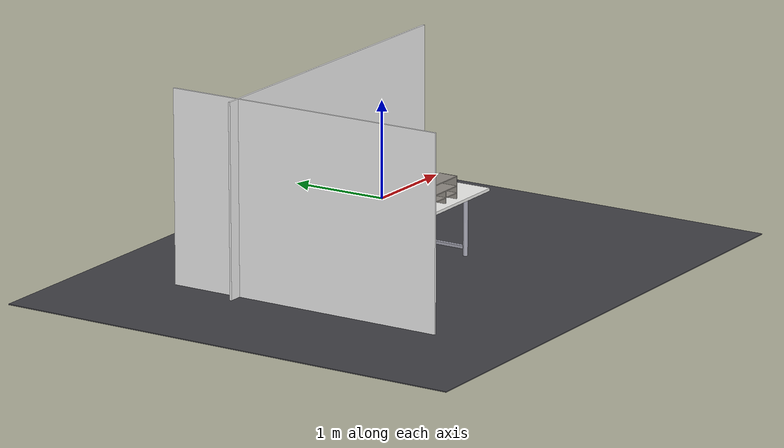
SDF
<sdf version="1.6">
 <world name="default">
  <model name="floor">
   <static>true</static>
   <pose>0.2 0 -0.77 0 0 0</pose>
   <link name="link">
    <collision name="collision"><geometry><box><size>6.0 5.0 0.01</size></box></geometry></collision>
    <visual name="visual">
     <geometry><box><size>6.0 5.0 0.01</size></box></geometry>
     <material>
      <ambient>0.22 0.22 0.24 1</ambient>
      <diffuse>0.26 0.26 0.28 1</diffuse>
      <specular>0.02 0.02 0.02 1</specular>
     </material>
    </visual>
   </link>
  </model>
  <model name="table">
   <static>true</static>
   <link name="link">
    <collision name="tabletop_col">
     <pose>0.2 0 -0.055 0 0 0</pose>
     <geometry><box><size>1.6 1.25 0.03</size></box></geometry>
    </collision>
    <visual name="tabletop_vis">
     <pose>0.2 0 -0.055 0 0 0</pose>
     <geometry><box><size>1.6 1.25 0.03</size></box></geometry>
     <material>
      <ambient>0.94 0.94 0.93 1</ambient>
      <diffuse>0.96 0.96 0.95 1</diffuse>
      <specular>0.4 0.4 0.4 1</specular>
     </material>
    </visual>
    <collision name="leg_fl_col">
     <pose>-0.55 -0.375 -0.42 0 0 0</pose>
     <geometry><cylinder><radius>0.025</radius><length>0.695</length></cylinder></geometry>
    </collision>
    <visual name="leg_fl_vis">
     <pose>-0.55 -0.375 -0.42 0 0 0</pose>
     <geometry><cylinder><radius>0.025</radius><length>0.695</length></cylinder></geometry>
     <material>
      <ambient>0.55 0.55 0.60 1</ambient>
      <diffuse>0.65 0.65 0.70 1</diffuse>
      <specular>0.85 0.85 0.90 1</specular>
     </material>
    </visual>
    <collision name="leg_fr_col">
     <pose>-0.55 0.375 -0.42 0 0 0</pose>
     <geometry><cylinder><radius>0.025</radius><length>0.695</length></cylinder></geometry>
    </collision>
    <visual name="leg_fr_vis">
     <pose>-0.55 0.375 -0.42 0 0 0</pose>
     <geometry><cylinder><radius>0.025</radius><length>0.695</length></cylinder></geometry>
     <material>
      <ambient>0.55 0.55 0.60 1</ambient>
      <diffuse>0.65 0.65 0.70 1</diffuse>
      <specular>0.85 0.85 0.90 1</specular>
     </material>
    </visual>
    <collision name="leg_bl_col">
     <pose>0.95 -0.375 -0.42 0 0 0</pose>
     <geometry><cylinder><radius>0.025</radius><length>0.695</length></cylinder></geometry>
    </collision>
    <visual name="leg_bl_vis">
     <pose>0.95 -0.375 -0.42 0 0 0</pose>
     <geometry><cylinder><radius>0.025</radius><length>0.695</length></cylinder></geometry>
     <material>
      <ambient>0.55 0.55 0.60 1</ambient>
      <diffuse>0.65 0.65 0.70 1</diffuse>
      <specular>0.85 0.85 0.90 1</specular>
     </material>
    </visual>
    <collision name="leg_br_col">
     <pose>0.95 0.375 -0.42 0 0 0</pose>
     <geometry><cylinder><radius>0.025</radius><length>0.695</length></cylinder></geometry>
    </collision>
    <visual name="leg_br_vis">
     <pose>0.95 0.375 -0.42 0 0 0</pose>
     <geometry><cylinder><radius>0.025</radius><length>0.695</length></cylinder></geometry>
     <material>
      <ambient>0.55 0.55 0.60 1</ambient>
      <diffuse>0.65 0.65 0.70 1</diffuse>
      <specular>0.85 0.85 0.90 1</specular>
     </material>
    </visual>
    <visual name="crossbar_front_vis">
     <pose>-0.55 0 -0.68 0 0 0</pose>
     <geometry><box><size>0.04 0.71 0.03</size></box></geometry>
     <material>
      <ambient>0.55 0.55 0.60 1</ambient>
      <diffuse>0.65 0.65 0.70 1</diffuse>
      <specular>0.85 0.85 0.90 1</specular>
     </material>
    </visual>
    <visual name="crossbar_back_vis">
     <pose>0.95 0 -0.68 0 0 0</pose>
     <geometry><box><size>0.04 0.71 0.03</size></box></geometry>
     <material>
      <ambient>0.55 0.55 0.60 1</ambient>
      <diffuse>0.65 0.65 0.70 1</diffuse>
      <specular>0.85 0.85 0.90 1</specular>
     </material>
    </visual>
   </link>
  </model>
  <model name="wooden_plank">
   <static>true</static>
   <pose>0.2 0 -0.02 0 0 0</pose>
   <link name="link">
    <collision name="collision">
     <pose>0 0 -0.10 0 0 0</pose>
     <geometry><box><size>1.158 0.225 0.24</size></box></geometry>
     <surface>
      <friction><ode><mu>0.8</mu><mu2>0.8</mu2></ode></friction>
      <bounce><restitution_coefficient>0</restitution_coefficient><threshold>1e6</threshold></bounce>
      <contact>
       <collide_bitmask>0x0001</collide_bitmask>
       <ode><kp>1000000</kp><kd>100</kd><max_vel>0.01</max_vel><min_depth>0.001</min_depth></ode>
      </contact>
     </surface>
    </collision>
    <visual name="visual">
     <geometry><box><size>1.218 0.285 0.04</size></box></geometry>
     <material>
      <ambient>0.72 0.55 0.33 1</ambient>
      <diffuse>0.76 0.60 0.38 1</diffuse>
      <specular>0.08 0.06 0.04 1</specular>
     </material>
    </visual>
   </link>
  </model>
  <model name="furinno_shelf">
   <static>true</static>
   <pose>0.30 -0.45 -0.04 0 0 0</pose>
   <link name="link">
    <collision name="side_l_col">
     <pose>-0.2035 0 0.1175 0 0 0</pose>
     <geometry><box><size>0.010 0.198 0.235</size></box></geometry>
     <surface><contact><collide_bitmask>0x0001</collide_bitmask></contact></surface>
    </collision>
    <visual name="side_l_vis">
     <pose>-0.2035 0 0.1175 0 0 0</pose>
     <geometry><box><size>0.010 0.198 0.235</size></box></geometry>
     <material>
      <ambient>0.45 0.44 0.42 1</ambient>
      <diffuse>0.58 0.56 0.53 1</diffuse>
      <specular>0.12 0.12 0.12 1</specular>
     </material>
    </visual>
    <collision name="side_r_col">
     <pose>0.2035 0 0.1175 0 0 0</pose>
     <geometry><box><size>0.010 0.198 0.235</size></box></geometry>
     <surface><contact><collide_bitmask>0x0001</collide_bitmask></contact></surface>
    </collision>
    <visual name="side_r_vis">
     <pose>0.2035 0 0.1175 0 0 0</pose>
     <geometry><box><size>0.010 0.198 0.235</size></box></geometry>
     <material>
      <ambient>0.45 0.44 0.42 1</ambient>
      <diffuse>0.58 0.56 0.53 1</diffuse>
      <specular>0.12 0.12 0.12 1</specular>
     </material>
    </visual>
    <collision name="top_col">
     <pose>0 0 0.230 0 0 0</pose>
     <geometry><box><size>0.417 0.198 0.010</size></box></geometry>
     <surface><contact><collide_bitmask>0x0001</collide_bitmask></contact></surface>
    </collision>
    <visual name="top_vis">
     <pose>0 0 0.230 0 0 0</pose>
     <geometry><box><size>0.417 0.198 0.010</size></box></geometry>
     <material>
      <ambient>0.45 0.44 0.42 1</ambient>
      <diffuse>0.58 0.56 0.53 1</diffuse>
      <specular>0.12 0.12 0.12 1</specular>
     </material>
    </visual>
    <collision name="mid_shelf_col">
     <pose>0 0 0.130 0 0 0</pose>
     <geometry><box><size>0.397 0.198 0.010</size></box></geometry>
     <surface><contact><collide_bitmask>0x0001</collide_bitmask></contact></surface>
    </collision>
    <visual name="mid_shelf_vis">
     <pose>0 0 0.130 0 0 0</pose>
     <geometry><box><size>0.397 0.198 0.010</size></box></geometry>
     <material>
      <ambient>0.45 0.44 0.42 1</ambient>
      <diffuse>0.58 0.56 0.53 1</diffuse>
      <specular>0.12 0.12 0.12 1</specular>
     </material>
    </visual>
    <collision name="low_shelf_col">
     <pose>0 0 0.060 0 0 0</pose>
     <geometry><box><size>0.397 0.198 0.010</size></box></geometry>
     <surface><contact><collide_bitmask>0x0001</collide_bitmask></contact></surface>
    </collision>
    <visual name="low_shelf_vis">
     <pose>0 0 0.060 0 0 0</pose>
     <geometry><box><size>0.397 0.198 0.010</size></box></geometry>
     <material>
      <ambient>0.45 0.44 0.42 1</ambient>
      <diffuse>0.58 0.56 0.53 1</diffuse>
      <specular>0.12 0.12 0.12 1</specular>
     </material>
    </visual>
    <collision name="divider_col">
     <pose>0 0 0.0625 0 0 0</pose>
     <geometry><box><size>0.010 0.198 0.125</size></box></geometry>
     <surface><contact><collide_bitmask>0x0001</collide_bitmask></contact></surface>
    </collision>
    <visual name="divider_vis">
     <pose>0 0 0.0625 0 0 0</pose>
     <geometry><box><size>0.010 0.198 0.125</size></box></geometry>
     <material>
      <ambient>0.45 0.44 0.42 1</ambient>
      <diffuse>0.58 0.56 0.53 1</diffuse>
      <specular>0.12 0.12 0.12 1</specular>
     </material>
    </visual>
   </link>
  </model>
  <model name="back_wall">
   <static>true</static>
   <pose>0.2 0.75 0.23 0 0 0</pose>
   <link name="link">
    <collision name="collision"><geometry><box><size>3.5 0.02 2.0</size></box></geometry></collision>
    <visual name="visual">
     <geometry><box><size>3.5 0.02 2.0</size></box></geometry>
     <material>
      <ambient>0.92 0.92 0.92 1</ambient>
      <diffuse>0.95 0.95 0.95 1</diffuse>
      <specular>0.05 0.05 0.05 1</specular>
     </material>
    </visual>
   </link>
  </model>
  <model name="left_wall">
   <static>true</static>
   <pose>-1.4 0 0.23 0 0 0</pose>
   <link name="link">
    <visual name="visual">
     <geometry><box><size>0.02 3.0 2.0</size></box></geometry>
     <material>
      <ambient>0.92 0.92 0.92 1</ambient>
      <diffuse>0.95 0.95 0.95 1</diffuse>
      <specular>0.05 0.05 0.05 1</specular>
     </material>
    </visual>
   </link>
  </model>
 </world>
</sdf>
